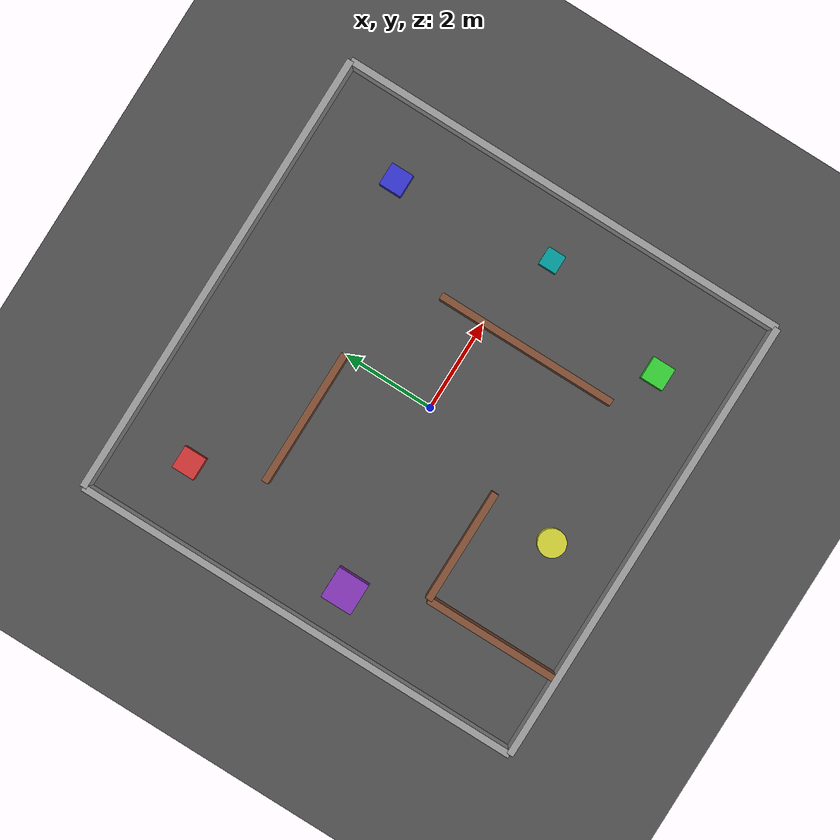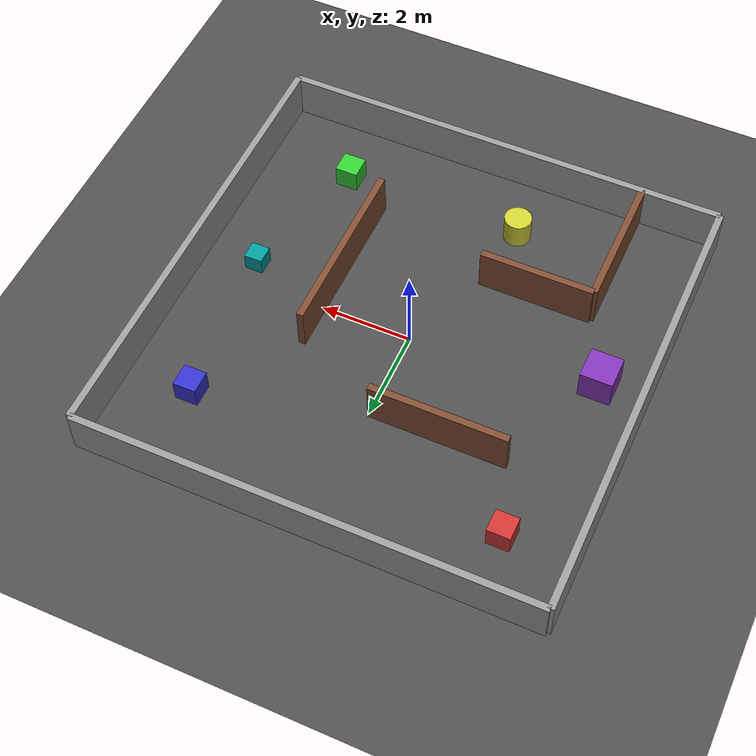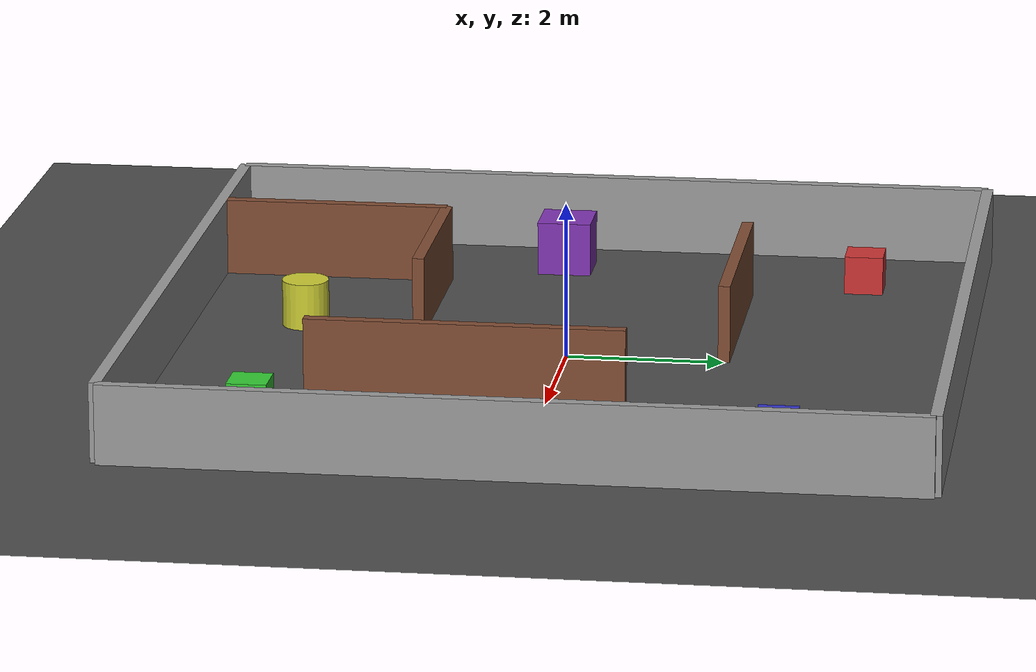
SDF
<?xml version="1.0" ?>
<sdf version="1.10">
  <world name="slam_test_world">

    <!-- ================= PLUGINS ================= -->
    <plugin filename="gz-sim-physics-system"
            name="gz::sim::systems::Physics"/>
    <plugin filename="gz-sim-user-commands-system"
            name="gz::sim::systems::UserCommands"/>
    <plugin filename="gz-sim-scene-broadcaster-system"
            name="gz::sim::systems::SceneBroadcaster"/>
    <plugin filename="gz-sim-sensors-system"
            name="gz::sim::systems::Sensors">
      <render_engine>ogre2</render_engine>
    </plugin>
    <plugin filename="gz-sim-imu-system"
            name="gz::sim::systems::Imu"/>
    <plugin filename="gz-sim-magnetometer-system"
            name="gz::sim::systems::Magnetometer"/>
    <plugin filename="gz-sim-navsat-system"
            name="gz::sim::systems::NavSat"/>

    <!-- ============ GEOGRAPHIC COORDINATES ============ -->
    <spherical_coordinates>
      <surface_model>EARTH_WGS84</surface_model>
      <latitude_deg>-25.33057507763572</latitude_deg>
      <longitude_deg>-57.51813474688503</longitude_deg>
      <elevation>80.0</elevation>
      <heading_deg>0</heading_deg>
    </spherical_coordinates>

    <!-- ================= PHYSICS ================= -->
    <physics name="1ms" type="ignored">
      <max_step_size>0.001</max_step_size>
      <real_time_factor>1</real_time_factor>
      <real_time_update_rate>1000</real_time_update_rate>
    </physics>

    <gravity>0 0 -9.8</gravity>

    <!-- ================= SCENE ================= -->
    <scene>
      <ambient>0.4 0.4 0.4 1</ambient>
      <background>0.7 0.7 0.7 1</background>
      <shadows>true</shadows>
    </scene>

    <!-- ================= GROUND ================= -->
    <model name="ground_plane">
      <static>true</static>
      <link name="link">
        <collision name="collision">
          <geometry><plane><normal>0 0 1</normal><size>100 100</size></plane></geometry>
        </collision>
        <visual name="visual">
          <geometry><plane><normal>0 0 1</normal><size>100 100</size></plane></geometry>
          <material><diffuse>0.3 0.3 0.3 1</diffuse></material>
        </visual>
      </link>
    </model>

    <!-- ================= MURS EXTERIEURS (10m x 10m) ================= -->
    <!-- Mur Nord -->
    <model name="wall_north">
      <static>true</static>
      <pose>0 5 0.5 0 0 0</pose>
      <link name="link">
        <collision name="collision">
          <geometry><box><size>10 0.15 1.0</size></box></geometry>
        </collision>
        <visual name="visual">
          <geometry><box><size>10 0.15 1.0</size></box></geometry>
          <material><diffuse>0.6 0.6 0.6 1</diffuse></material>
        </visual>
      </link>
    </model>

    <!-- Mur Sud -->
    <model name="wall_south">
      <static>true</static>
      <pose>0 -5 0.5 0 0 0</pose>
      <link name="link">
        <collision name="collision">
          <geometry><box><size>10 0.15 1.0</size></box></geometry>
        </collision>
        <visual name="visual">
          <geometry><box><size>10 0.15 1.0</size></box></geometry>
          <material><diffuse>0.6 0.6 0.6 1</diffuse></material>
        </visual>
      </link>
    </model>

    <!-- Mur Est -->
    <model name="wall_east">
      <static>true</static>
      <pose>5 0 0.5 0 0 0</pose>
      <link name="link">
        <collision name="collision">
          <geometry><box><size>0.15 10 1.0</size></box></geometry>
        </collision>
        <visual name="visual">
          <geometry><box><size>0.15 10 1.0</size></box></geometry>
          <material><diffuse>0.6 0.6 0.6 1</diffuse></material>
        </visual>
      </link>
    </model>

    <!-- Mur Ouest -->
    <model name="wall_west">
      <static>true</static>
      <pose>-5 0 0.5 0 0 0</pose>
      <link name="link">
        <collision name="collision">
          <geometry><box><size>0.15 10 1.0</size></box></geometry>
        </collision>
        <visual name="visual">
          <geometry><box><size>0.15 10 1.0</size></box></geometry>
          <material><diffuse>0.6 0.6 0.6 1</diffuse></material>
        </visual>
      </link>
    </model>

    <!-- ================= MURS INTERIEURS ================= -->
    <!-- Mur intérieur 1 - horizontal -->
    <model name="wall_inner_1">
      <static>true</static>
      <pose>-1.5 2 0.5 0 0 0</pose>
      <link name="link">
        <collision name="collision">
          <geometry><box><size>3 0.15 1.0</size></box></geometry>
        </collision>
        <visual name="visual">
          <geometry><box><size>3 0.15 1.0</size></box></geometry>
          <material><diffuse>0.5 0.3 0.2 1</diffuse></material>
        </visual>
      </link>
    </model>

    <!-- Mur intérieur 2 - vertical -->
    <model name="wall_inner_2">
      <static>true</static>
      <pose>2 -1 0.5 0 0 0</pose>
      <link name="link">
        <collision name="collision">
          <geometry><box><size>0.15 4 1.0</size></box></geometry>
        </collision>
        <visual name="visual">
          <geometry><box><size>0.15 4 1.0</size></box></geometry>
          <material><diffuse>0.5 0.3 0.2 1</diffuse></material>
        </visual>
      </link>
    </model>

    <!-- Mur intérieur 3 - en L -->
    <model name="wall_inner_3">
      <static>true</static>
      <pose>-2 -2 0.5 0 0 0</pose>
      <link name="link">
        <collision name="collision">
          <geometry><box><size>2.5 0.15 1.0</size></box></geometry>
        </collision>
        <visual name="visual">
          <geometry><box><size>2.5 0.15 1.0</size></box></geometry>
          <material><diffuse>0.5 0.3 0.2 1</diffuse></material>
        </visual>
      </link>
    </model>

    <!-- Mur intérieur 4 - vertical -->
    <model name="wall_inner_4">
      <static>true</static>
      <pose>-3.25 -3.5 0.5 0 0 0</pose>
      <link name="link">
        <collision name="collision">
          <geometry><box><size>0.15 3 1.0</size></box></geometry>
        </collision>
        <visual name="visual">
          <geometry><box><size>0.15 3 1.0</size></box></geometry>
          <material><diffuse>0.5 0.3 0.2 1</diffuse></material>
        </visual>
      </link>
    </model>

    <!-- ================= OBSTACLES (boîtes) ================= -->
    <!-- Boîte A -->
    <model name="box_A">
      <static>true</static>
      <pose>-3.5 3.5 0.25 0 0 0</pose>
      <link name="link">
        <collision name="collision">
          <geometry><box><size>0.5 0.5 0.5</size></box></geometry>
        </collision>
        <visual name="visual">
          <geometry><box><size>0.5 0.5 0.5</size></box></geometry>
          <material><diffuse>0.8 0.2 0.2 1</diffuse></material>
        </visual>
      </link>
    </model>

    <!-- Boîte B -->
    <model name="box_B">
      <static>true</static>
      <pose>3.5 3 0.25 0 0 0</pose>
      <link name="link">
        <collision name="collision">
          <geometry><box><size>0.5 0.5 0.5</size></box></geometry>
        </collision>
        <visual name="visual">
          <geometry><box><size>0.5 0.5 0.5</size></box></geometry>
          <material><diffuse>0.2 0.2 0.8 1</diffuse></material>
        </visual>
      </link>
    </model>

    <!-- Boîte C -->
    <model name="box_C">
      <static>true</static>
      <pose>3 -3.5 0.25 0 0 0</pose>
      <link name="link">
        <collision name="collision">
          <geometry><box><size>0.5 0.5 0.5</size></box></geometry>
        </collision>
        <visual name="visual">
          <geometry><box><size>0.5 0.5 0.5</size></box></geometry>
          <material><diffuse>0.2 0.8 0.2 1</diffuse></material>
        </visual>
      </link>
    </model>

    <!-- Boîte D - cylindre -->
    <model name="cylinder_D">
      <static>true</static>
      <pose>-1 -3.5 0.3 0 0 0</pose>
      <link name="link">
        <collision name="collision">
          <geometry><cylinder><radius>0.3</radius><length>0.6</length></cylinder></geometry>
        </collision>
        <visual name="visual">
          <geometry><cylinder><radius>0.3</radius><length>0.6</length></cylinder></geometry>
          <material><diffuse>0.8 0.8 0.2 1</diffuse></material>
        </visual>
      </link>
    </model>

    <!-- Boîte F - grande -->
    <model name="box_F">
      <static>true</static>
      <pose>-4 -0.5 0.35 0 0 0</pose>
      <link name="link">
        <collision name="collision">
          <geometry><box><size>0.7 0.7 0.7</size></box></geometry>
        </collision>
        <visual name="visual">
          <geometry><box><size>0.7 0.7 0.7</size></box></geometry>
          <material><diffuse>0.5 0.2 0.7 1</diffuse></material>
        </visual>
      </link>
    </model>

    <!-- Boîte G -->
    <model name="box_G">
      <static>true</static>
      <pose>3.8 -0.5 0.2 0 0 0</pose>
      <link name="link">
        <collision name="collision">
          <geometry><box><size>0.4 0.4 0.4</size></box></geometry>
        </collision>
        <visual name="visual">
          <geometry><box><size>0.4 0.4 0.4</size></box></geometry>
          <material><diffuse>0 0.6 0.6 1</diffuse></material>
        </visual>
      </link>
    </model>

    <!-- ================= SUN ================= -->
    <light name="sun" type="directional">
      <pose>0 0 10 0 0 0</pose>
      <cast_shadows>true</cast_shadows>
      <direction>-0.5 0.1 -0.9</direction>
      <diffuse>0.8 0.8 0.8 1</diffuse>
      <specular>0.2 0.2 0.2 1</specular>
    </light>

  </world>
</sdf>
